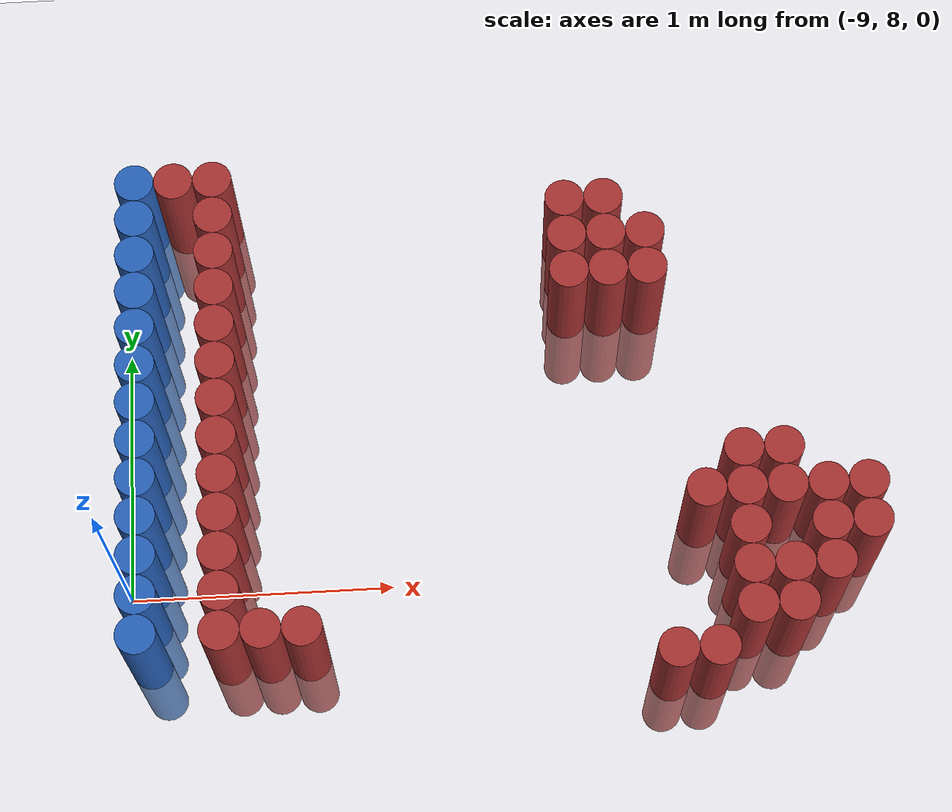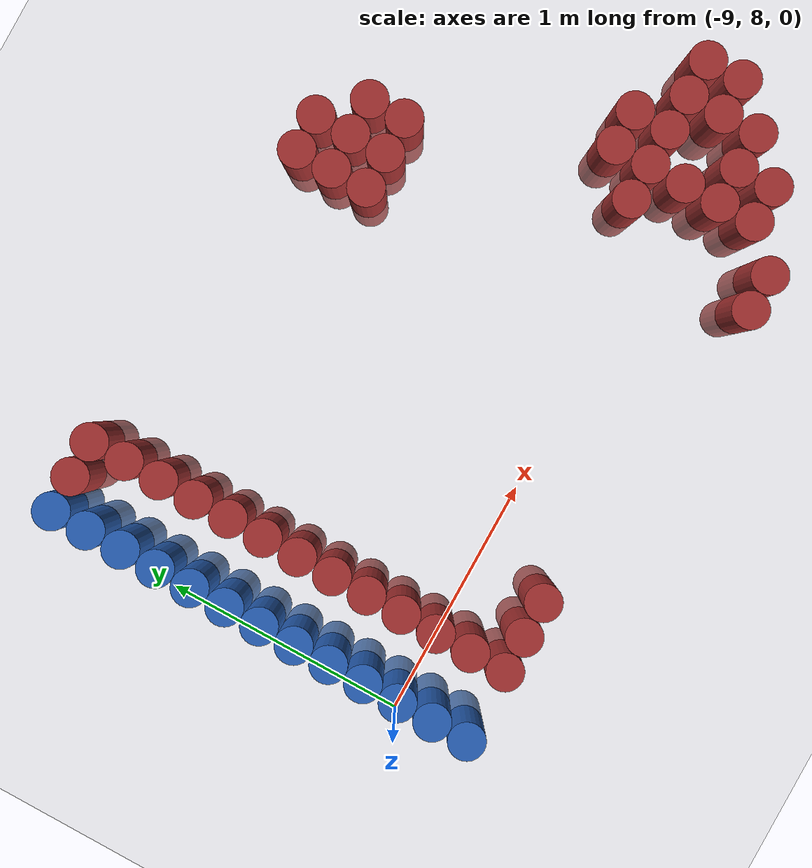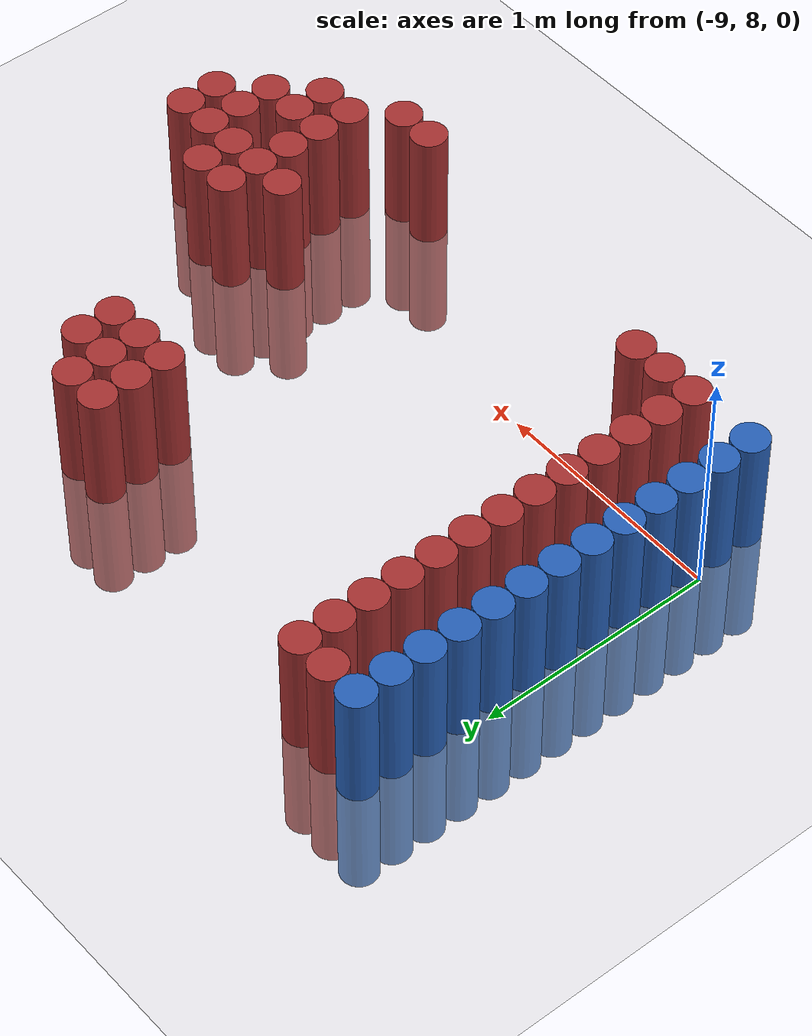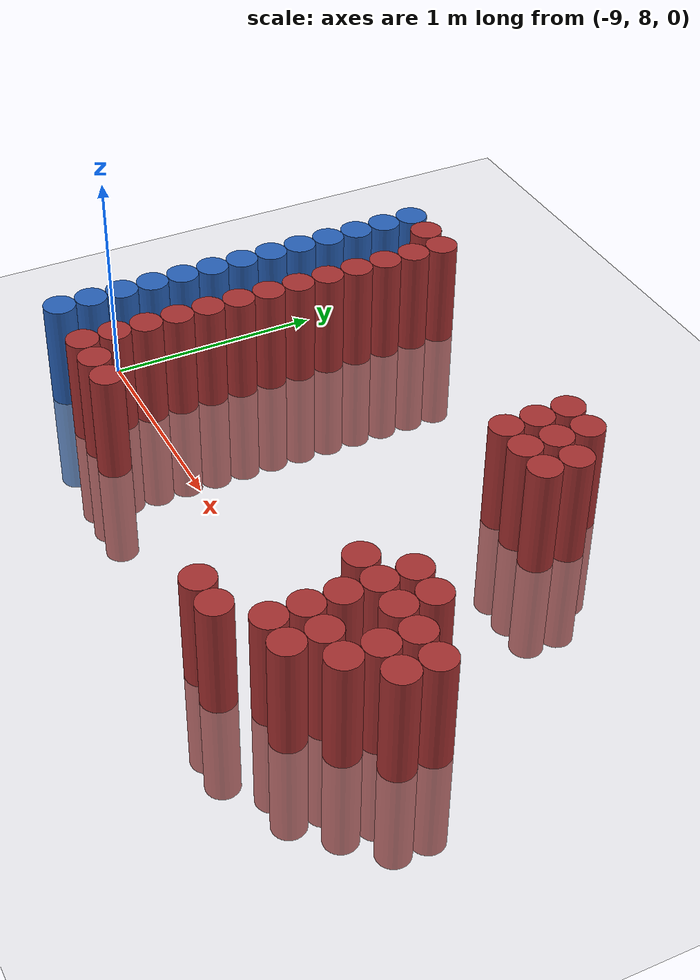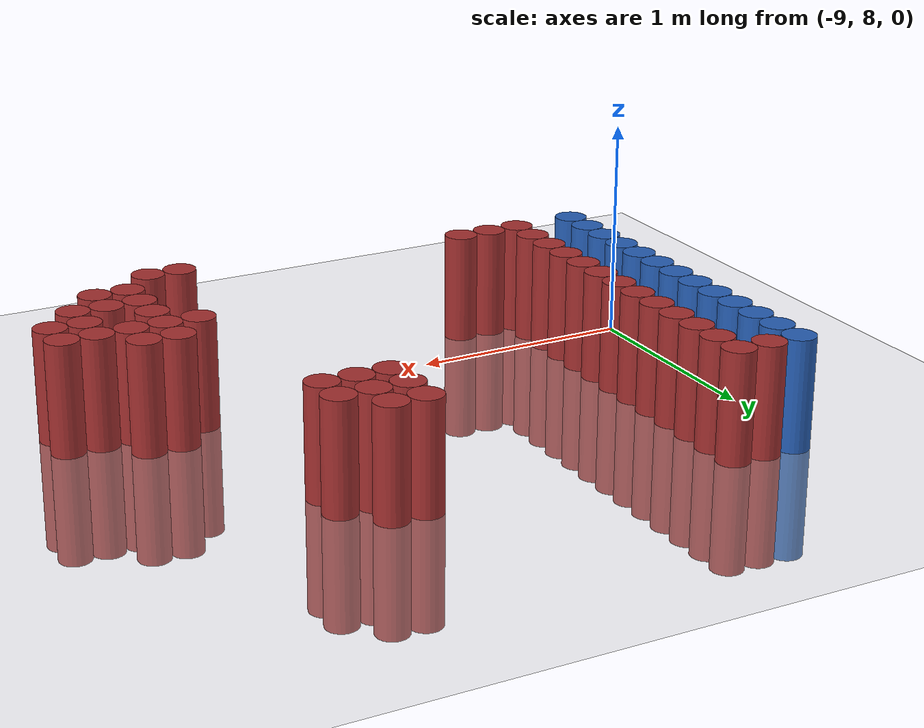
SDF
<sdf version="1.6">
 <world name="default">
  <model name="ground_plane">
   <static>1</static>
   <link name="link">
    <collision name="collision">
     <geometry><plane><normal>0 0 1</normal><size>100 100</size></plane></geometry>
     <surface><friction><ode><mu>100</mu><mu2>50</mu2></ode></friction></surface>
    </collision>
    <visual name="visual">
     <cast_shadows>0</cast_shadows>
     <geometry><plane><normal>0 0 1</normal><size>100 100</size></plane></geometry>
     <material>
      <script><uri>file://media/materials/scripts/gazebo.material</uri><name>Gazebo/Grey</name></script>
     </material>
    </visual>
   </link>
  </model>
  <model name="unit_cylinder_142">
   <static>1</static>
   <pose>-8.925000 7.725000 0.000000 0.000000 0.000000 0.000000</pose>
   <link name="link">
    <inertial>
     <mass>1</mass>
     <inertia><ixx>0.145833</ixx><ixy>0</ixy><ixz>0</ixz><iyy>0.145833</iyy><iyz>0</iyz><izz>0.125</izz></inertia>
    </inertial>
    <collision name="collision">
     <geometry><cylinder><radius>0.075000</radius><length>1</length></cylinder></geometry>
    </collision>
    <visual name="visual">
     <geometry><cylinder><radius>0.075000</radius><length>1</length></cylinder></geometry>
     <material>
      <ambient>0.152000 0.379000 0.720000 1</ambient>
      <diffuse>0.152000 0.379000 0.720000 1</diffuse>
     </material>
     <material>
      <script><name>Gazebo/Grey</name><uri>file://media/materials/scripts/gazebo.material</uri></script>
     </material>
    </visual>
   </link>
  </model>
  <model name="unit_cylinder_143">
   <static>1</static>
   <pose>-8.925000 7.875000 0.000000 0.000000 0.000000 0.000000</pose>
   <link name="link">
    <inertial>
     <mass>1</mass>
     <inertia><ixx>0.145833</ixx><ixy>0</ixy><ixz>0</ixz><iyy>0.145833</iyy><iyz>0</iyz><izz>0.125</izz></inertia>
    </inertial>
    <collision name="collision">
     <geometry><cylinder><radius>0.075000</radius><length>1</length></cylinder></geometry>
    </collision>
    <visual name="visual">
     <geometry><cylinder><radius>0.075000</radius><length>1</length></cylinder></geometry>
     <material>
      <ambient>0.152000 0.379000 0.720000 1</ambient>
      <diffuse>0.152000 0.379000 0.720000 1</diffuse>
     </material>
     <material>
      <script><name>Gazebo/Grey</name><uri>file://media/materials/scripts/gazebo.material</uri></script>
     </material>
    </visual>
   </link>
  </model>
  <model name="unit_cylinder_144">
   <static>1</static>
   <pose>-8.925000 8.025000 0.000000 0.000000 0.000000 0.000000</pose>
   <link name="link">
    <inertial>
     <mass>1</mass>
     <inertia><ixx>0.145833</ixx><ixy>0</ixy><ixz>0</ixz><iyy>0.145833</iyy><iyz>0</iyz><izz>0.125</izz></inertia>
    </inertial>
    <collision name="collision">
     <geometry><cylinder><radius>0.075000</radius><length>1</length></cylinder></geometry>
    </collision>
    <visual name="visual">
     <geometry><cylinder><radius>0.075000</radius><length>1</length></cylinder></geometry>
     <material>
      <ambient>0.152000 0.379000 0.720000 1</ambient>
      <diffuse>0.152000 0.379000 0.720000 1</diffuse>
     </material>
     <material>
      <script><name>Gazebo/Grey</name><uri>file://media/materials/scripts/gazebo.material</uri></script>
     </material>
    </visual>
   </link>
  </model>
  <model name="unit_cylinder_145">
   <static>1</static>
   <pose>-8.925000 8.175000 0.000000 0.000000 0.000000 0.000000</pose>
   <link name="link">
    <inertial>
     <mass>1</mass>
     <inertia><ixx>0.145833</ixx><ixy>0</ixy><ixz>0</ixz><iyy>0.145833</iyy><iyz>0</iyz><izz>0.125</izz></inertia>
    </inertial>
    <collision name="collision">
     <geometry><cylinder><radius>0.075000</radius><length>1</length></cylinder></geometry>
    </collision>
    <visual name="visual">
     <geometry><cylinder><radius>0.075000</radius><length>1</length></cylinder></geometry>
     <material>
      <ambient>0.152000 0.379000 0.720000 1</ambient>
      <diffuse>0.152000 0.379000 0.720000 1</diffuse>
     </material>
     <material>
      <script><name>Gazebo/Grey</name><uri>file://media/materials/scripts/gazebo.material</uri></script>
     </material>
    </visual>
   </link>
  </model>
  <model name="unit_cylinder_146">
   <static>1</static>
   <pose>-8.925000 8.325000 0.000000 0.000000 0.000000 0.000000</pose>
   <link name="link">
    <inertial>
     <mass>1</mass>
     <inertia><ixx>0.145833</ixx><ixy>0</ixy><ixz>0</ixz><iyy>0.145833</iyy><iyz>0</iyz><izz>0.125</izz></inertia>
    </inertial>
    <collision name="collision">
     <geometry><cylinder><radius>0.075000</radius><length>1</length></cylinder></geometry>
    </collision>
    <visual name="visual">
     <geometry><cylinder><radius>0.075000</radius><length>1</length></cylinder></geometry>
     <material>
      <ambient>0.152000 0.379000 0.720000 1</ambient>
      <diffuse>0.152000 0.379000 0.720000 1</diffuse>
     </material>
     <material>
      <script><name>Gazebo/Grey</name><uri>file://media/materials/scripts/gazebo.material</uri></script>
     </material>
    </visual>
   </link>
  </model>
  <model name="unit_cylinder_147">
   <static>1</static>
   <pose>-8.925000 8.475000 0.000000 0.000000 0.000000 0.000000</pose>
   <link name="link">
    <inertial>
     <mass>1</mass>
     <inertia><ixx>0.145833</ixx><ixy>0</ixy><ixz>0</ixz><iyy>0.145833</iyy><iyz>0</iyz><izz>0.125</izz></inertia>
    </inertial>
    <collision name="collision">
     <geometry><cylinder><radius>0.075000</radius><length>1</length></cylinder></geometry>
    </collision>
    <visual name="visual">
     <geometry><cylinder><radius>0.075000</radius><length>1</length></cylinder></geometry>
     <material>
      <ambient>0.152000 0.379000 0.720000 1</ambient>
      <diffuse>0.152000 0.379000 0.720000 1</diffuse>
     </material>
     <material>
      <script><name>Gazebo/Grey</name><uri>file://media/materials/scripts/gazebo.material</uri></script>
     </material>
    </visual>
   </link>
  </model>
  <model name="unit_cylinder_148">
   <static>1</static>
   <pose>-8.925000 8.625000 0.000000 0.000000 0.000000 0.000000</pose>
   <link name="link">
    <inertial>
     <mass>1</mass>
     <inertia><ixx>0.145833</ixx><ixy>0</ixy><ixz>0</ixz><iyy>0.145833</iyy><iyz>0</iyz><izz>0.125</izz></inertia>
    </inertial>
    <collision name="collision">
     <geometry><cylinder><radius>0.075000</radius><length>1</length></cylinder></geometry>
    </collision>
    <visual name="visual">
     <geometry><cylinder><radius>0.075000</radius><length>1</length></cylinder></geometry>
     <material>
      <ambient>0.152000 0.379000 0.720000 1</ambient>
      <diffuse>0.152000 0.379000 0.720000 1</diffuse>
     </material>
     <material>
      <script><name>Gazebo/Grey</name><uri>file://media/materials/scripts/gazebo.material</uri></script>
     </material>
    </visual>
   </link>
  </model>
  <model name="unit_cylinder_149">
   <static>1</static>
   <pose>-8.925000 8.775000 0.000000 0.000000 0.000000 0.000000</pose>
   <link name="link">
    <inertial>
     <mass>1</mass>
     <inertia><ixx>0.145833</ixx><ixy>0</ixy><ixz>0</ixz><iyy>0.145833</iyy><iyz>0</iyz><izz>0.125</izz></inertia>
    </inertial>
    <collision name="collision">
     <geometry><cylinder><radius>0.075000</radius><length>1</length></cylinder></geometry>
    </collision>
    <visual name="visual">
     <geometry><cylinder><radius>0.075000</radius><length>1</length></cylinder></geometry>
     <material>
      <ambient>0.152000 0.379000 0.720000 1</ambient>
      <diffuse>0.152000 0.379000 0.720000 1</diffuse>
     </material>
     <material>
      <script><name>Gazebo/Grey</name><uri>file://media/materials/scripts/gazebo.material</uri></script>
     </material>
    </visual>
   </link>
  </model>
  <model name="unit_cylinder_150">
   <static>1</static>
   <pose>-8.925000 8.925000 0.000000 0.000000 0.000000 0.000000</pose>
   <link name="link">
    <inertial>
     <mass>1</mass>
     <inertia><ixx>0.145833</ixx><ixy>0</ixy><ixz>0</ixz><iyy>0.145833</iyy><iyz>0</iyz><izz>0.125</izz></inertia>
    </inertial>
    <collision name="collision">
     <geometry><cylinder><radius>0.075000</radius><length>1</length></cylinder></geometry>
    </collision>
    <visual name="visual">
     <geometry><cylinder><radius>0.075000</radius><length>1</length></cylinder></geometry>
     <material>
      <ambient>0.152000 0.379000 0.720000 1</ambient>
      <diffuse>0.152000 0.379000 0.720000 1</diffuse>
     </material>
     <material>
      <script><name>Gazebo/Grey</name><uri>file://media/materials/scripts/gazebo.material</uri></script>
     </material>
    </visual>
   </link>
  </model>
  <model name="unit_cylinder_151">
   <static>1</static>
   <pose>-8.925000 9.075000 0.000000 0.000000 0.000000 0.000000</pose>
   <link name="link">
    <inertial>
     <mass>1</mass>
     <inertia><ixx>0.145833</ixx><ixy>0</ixy><ixz>0</ixz><iyy>0.145833</iyy><iyz>0</iyz><izz>0.125</izz></inertia>
    </inertial>
    <collision name="collision">
     <geometry><cylinder><radius>0.075000</radius><length>1</length></cylinder></geometry>
    </collision>
    <visual name="visual">
     <geometry><cylinder><radius>0.075000</radius><length>1</length></cylinder></geometry>
     <material>
      <ambient>0.152000 0.379000 0.720000 1</ambient>
      <diffuse>0.152000 0.379000 0.720000 1</diffuse>
     </material>
     <material>
      <script><name>Gazebo/Grey</name><uri>file://media/materials/scripts/gazebo.material</uri></script>
     </material>
    </visual>
   </link>
  </model>
  <model name="unit_cylinder_152">
   <static>1</static>
   <pose>-8.925000 9.225000 0.000000 0.000000 0.000000 0.000000</pose>
   <link name="link">
    <inertial>
     <mass>1</mass>
     <inertia><ixx>0.145833</ixx><ixy>0</ixy><ixz>0</ixz><iyy>0.145833</iyy><iyz>0</iyz><izz>0.125</izz></inertia>
    </inertial>
    <collision name="collision">
     <geometry><cylinder><radius>0.075000</radius><length>1</length></cylinder></geometry>
    </collision>
    <visual name="visual">
     <geometry><cylinder><radius>0.075000</radius><length>1</length></cylinder></geometry>
     <material>
      <ambient>0.152000 0.379000 0.720000 1</ambient>
      <diffuse>0.152000 0.379000 0.720000 1</diffuse>
     </material>
     <material>
      <script><name>Gazebo/Grey</name><uri>file://media/materials/scripts/gazebo.material</uri></script>
     </material>
    </visual>
   </link>
  </model>
  <model name="unit_cylinder_153">
   <static>1</static>
   <pose>-8.925000 9.375000 0.000000 0.000000 0.000000 0.000000</pose>
   <link name="link">
    <inertial>
     <mass>1</mass>
     <inertia><ixx>0.145833</ixx><ixy>0</ixy><ixz>0</ixz><iyy>0.145833</iyy><iyz>0</iyz><izz>0.125</izz></inertia>
    </inertial>
    <collision name="collision">
     <geometry><cylinder><radius>0.075000</radius><length>1</length></cylinder></geometry>
    </collision>
    <visual name="visual">
     <geometry><cylinder><radius>0.075000</radius><length>1</length></cylinder></geometry>
     <material>
      <ambient>0.152000 0.379000 0.720000 1</ambient>
      <diffuse>0.152000 0.379000 0.720000 1</diffuse>
     </material>
     <material>
      <script><name>Gazebo/Grey</name><uri>file://media/materials/scripts/gazebo.material</uri></script>
     </material>
    </visual>
   </link>
  </model>
  <model name="unit_cylinder_154">
   <static>1</static>
   <pose>-8.925000 9.525000 0.000000 0.000000 0.000000 0.000000</pose>
   <link name="link">
    <inertial>
     <mass>1</mass>
     <inertia><ixx>0.145833</ixx><ixy>0</ixy><ixz>0</ixz><iyy>0.145833</iyy><iyz>0</iyz><izz>0.125</izz></inertia>
    </inertial>
    <collision name="collision">
     <geometry><cylinder><radius>0.075000</radius><length>1</length></cylinder></geometry>
    </collision>
    <visual name="visual">
     <geometry><cylinder><radius>0.075000</radius><length>1</length></cylinder></geometry>
     <material>
      <ambient>0.152000 0.379000 0.720000 1</ambient>
      <diffuse>0.152000 0.379000 0.720000 1</diffuse>
     </material>
     <material>
      <script><name>Gazebo/Grey</name><uri>file://media/materials/scripts/gazebo.material</uri></script>
     </material>
    </visual>
   </link>
  </model>
  <model name="unit_cylinder_156">
   <static>1</static>
   <pose>-8.775000 9.525000 0.000000 0.000000 0.000000 0.000000</pose>
   <link name="link">
    <inertial>
     <mass>1</mass>
     <inertia><ixx>0.145833</ixx><ixy>0</ixy><ixz>0</ixz><iyy>0.145833</iyy><iyz>0</iyz><izz>0.125</izz></inertia>
    </inertial>
    <collision name="collision">
     <geometry><cylinder><radius>0.075000</radius><length>1</length></cylinder></geometry>
    </collision>
    <visual name="visual">
     <geometry><cylinder><radius>0.075000</radius><length>1</length></cylinder></geometry>
     <material>
      <ambient>0.648000 0.192000 0.192000 1</ambient>
      <diffuse>0.648000 0.192000 0.192000 1</diffuse>
     </material>
     <material>
      <script><name>Gazebo/Grey</name><uri>file://media/materials/scripts/gazebo.material</uri></script>
     </material>
    </visual>
   </link>
  </model>
  <model name="unit_cylinder_158">
   <static>1</static>
   <pose>-8.625000 7.725000 0.000000 0.000000 0.000000 0.000000</pose>
   <link name="link">
    <inertial>
     <mass>1</mass>
     <inertia><ixx>0.145833</ixx><ixy>0</ixy><ixz>0</ixz><iyy>0.145833</iyy><iyz>0</iyz><izz>0.125</izz></inertia>
    </inertial>
    <collision name="collision">
     <geometry><cylinder><radius>0.075000</radius><length>1</length></cylinder></geometry>
    </collision>
    <visual name="visual">
     <geometry><cylinder><radius>0.075000</radius><length>1</length></cylinder></geometry>
     <material>
      <ambient>0.648000 0.192000 0.192000 1</ambient>
      <diffuse>0.648000 0.192000 0.192000 1</diffuse>
     </material>
     <material>
      <script><name>Gazebo/Grey</name><uri>file://media/materials/scripts/gazebo.material</uri></script>
     </material>
    </visual>
   </link>
  </model>
  <model name="unit_cylinder_159">
   <static>1</static>
   <pose>-8.625000 7.875000 0.000000 0.000000 0.000000 0.000000</pose>
   <link name="link">
    <inertial>
     <mass>1</mass>
     <inertia><ixx>0.145833</ixx><ixy>0</ixy><ixz>0</ixz><iyy>0.145833</iyy><iyz>0</iyz><izz>0.125</izz></inertia>
    </inertial>
    <collision name="collision">
     <geometry><cylinder><radius>0.075000</radius><length>1</length></cylinder></geometry>
    </collision>
    <visual name="visual">
     <geometry><cylinder><radius>0.075000</radius><length>1</length></cylinder></geometry>
     <material>
      <ambient>0.648000 0.192000 0.192000 1</ambient>
      <diffuse>0.648000 0.192000 0.192000 1</diffuse>
     </material>
     <material>
      <script><name>Gazebo/Grey</name><uri>file://media/materials/scripts/gazebo.material</uri></script>
     </material>
    </visual>
   </link>
  </model>
  <model name="unit_cylinder_160">
   <static>1</static>
   <pose>-8.625000 8.025000 0.000000 0.000000 0.000000 0.000000</pose>
   <link name="link">
    <inertial>
     <mass>1</mass>
     <inertia><ixx>0.145833</ixx><ixy>0</ixy><ixz>0</ixz><iyy>0.145833</iyy><iyz>0</iyz><izz>0.125</izz></inertia>
    </inertial>
    <collision name="collision">
     <geometry><cylinder><radius>0.075000</radius><length>1</length></cylinder></geometry>
    </collision>
    <visual name="visual">
     <geometry><cylinder><radius>0.075000</radius><length>1</length></cylinder></geometry>
     <material>
      <ambient>0.648000 0.192000 0.192000 1</ambient>
      <diffuse>0.648000 0.192000 0.192000 1</diffuse>
     </material>
     <material>
      <script><name>Gazebo/Grey</name><uri>file://media/materials/scripts/gazebo.material</uri></script>
     </material>
    </visual>
   </link>
  </model>
  <model name="unit_cylinder_161">
   <static>1</static>
   <pose>-8.625000 8.175000 0.000000 0.000000 0.000000 0.000000</pose>
   <link name="link">
    <inertial>
     <mass>1</mass>
     <inertia><ixx>0.145833</ixx><ixy>0</ixy><ixz>0</ixz><iyy>0.145833</iyy><iyz>0</iyz><izz>0.125</izz></inertia>
    </inertial>
    <collision name="collision">
     <geometry><cylinder><radius>0.075000</radius><length>1</length></cylinder></geometry>
    </collision>
    <visual name="visual">
     <geometry><cylinder><radius>0.075000</radius><length>1</length></cylinder></geometry>
     <material>
      <ambient>0.648000 0.192000 0.192000 1</ambient>
      <diffuse>0.648000 0.192000 0.192000 1</diffuse>
     </material>
     <material>
      <script><name>Gazebo/Grey</name><uri>file://media/materials/scripts/gazebo.material</uri></script>
     </material>
    </visual>
   </link>
  </model>
  <model name="unit_cylinder_162">
   <static>1</static>
   <pose>-8.625000 8.325000 0.000000 0.000000 0.000000 0.000000</pose>
   <link name="link">
    <inertial>
     <mass>1</mass>
     <inertia><ixx>0.145833</ixx><ixy>0</ixy><ixz>0</ixz><iyy>0.145833</iyy><iyz>0</iyz><izz>0.125</izz></inertia>
    </inertial>
    <collision name="collision">
     <geometry><cylinder><radius>0.075000</radius><length>1</length></cylinder></geometry>
    </collision>
    <visual name="visual">
     <geometry><cylinder><radius>0.075000</radius><length>1</length></cylinder></geometry>
     <material>
      <ambient>0.648000 0.192000 0.192000 1</ambient>
      <diffuse>0.648000 0.192000 0.192000 1</diffuse>
     </material>
     <material>
      <script><name>Gazebo/Grey</name><uri>file://media/materials/scripts/gazebo.material</uri></script>
     </material>
    </visual>
   </link>
  </model>
  <model name="unit_cylinder_163">
   <static>1</static>
   <pose>-8.625000 8.475000 0.000000 0.000000 0.000000 0.000000</pose>
   <link name="link">
    <inertial>
     <mass>1</mass>
     <inertia><ixx>0.145833</ixx><ixy>0</ixy><ixz>0</ixz><iyy>0.145833</iyy><iyz>0</iyz><izz>0.125</izz></inertia>
    </inertial>
    <collision name="collision">
     <geometry><cylinder><radius>0.075000</radius><length>1</length></cylinder></geometry>
    </collision>
    <visual name="visual">
     <geometry><cylinder><radius>0.075000</radius><length>1</length></cylinder></geometry>
     <material>
      <ambient>0.648000 0.192000 0.192000 1</ambient>
      <diffuse>0.648000 0.192000 0.192000 1</diffuse>
     </material>
     <material>
      <script><name>Gazebo/Grey</name><uri>file://media/materials/scripts/gazebo.material</uri></script>
     </material>
    </visual>
   </link>
  </model>
  <model name="unit_cylinder_164">
   <static>1</static>
   <pose>-8.625000 8.625000 0.000000 0.000000 0.000000 0.000000</pose>
   <link name="link">
    <inertial>
     <mass>1</mass>
     <inertia><ixx>0.145833</ixx><ixy>0</ixy><ixz>0</ixz><iyy>0.145833</iyy><iyz>0</iyz><izz>0.125</izz></inertia>
    </inertial>
    <collision name="collision">
     <geometry><cylinder><radius>0.075000</radius><length>1</length></cylinder></geometry>
    </collision>
    <visual name="visual">
     <geometry><cylinder><radius>0.075000</radius><length>1</length></cylinder></geometry>
     <material>
      <ambient>0.648000 0.192000 0.192000 1</ambient>
      <diffuse>0.648000 0.192000 0.192000 1</diffuse>
     </material>
     <material>
      <script><name>Gazebo/Grey</name><uri>file://media/materials/scripts/gazebo.material</uri></script>
     </material>
    </visual>
   </link>
  </model>
  <model name="unit_cylinder_165">
   <static>1</static>
   <pose>-8.625000 8.775000 0.000000 0.000000 0.000000 0.000000</pose>
   <link name="link">
    <inertial>
     <mass>1</mass>
     <inertia><ixx>0.145833</ixx><ixy>0</ixy><ixz>0</ixz><iyy>0.145833</iyy><iyz>0</iyz><izz>0.125</izz></inertia>
    </inertial>
    <collision name="collision">
     <geometry><cylinder><radius>0.075000</radius><length>1</length></cylinder></geometry>
    </collision>
    <visual name="visual">
     <geometry><cylinder><radius>0.075000</radius><length>1</length></cylinder></geometry>
     <material>
      <ambient>0.648000 0.192000 0.192000 1</ambient>
      <diffuse>0.648000 0.192000 0.192000 1</diffuse>
     </material>
     <material>
      <script><name>Gazebo/Grey</name><uri>file://media/materials/scripts/gazebo.material</uri></script>
     </material>
    </visual>
   </link>
  </model>
  <model name="unit_cylinder_166">
   <static>1</static>
   <pose>-8.625000 8.925000 0.000000 0.000000 0.000000 0.000000</pose>
   <link name="link">
    <inertial>
     <mass>1</mass>
     <inertia><ixx>0.145833</ixx><ixy>0</ixy><ixz>0</ixz><iyy>0.145833</iyy><iyz>0</iyz><izz>0.125</izz></inertia>
    </inertial>
    <collision name="collision">
     <geometry><cylinder><radius>0.075000</radius><length>1</length></cylinder></geometry>
    </collision>
    <visual name="visual">
     <geometry><cylinder><radius>0.075000</radius><length>1</length></cylinder></geometry>
     <material>
      <ambient>0.648000 0.192000 0.192000 1</ambient>
      <diffuse>0.648000 0.192000 0.192000 1</diffuse>
     </material>
     <material>
      <script><name>Gazebo/Grey</name><uri>file://media/materials/scripts/gazebo.material</uri></script>
     </material>
    </visual>
   </link>
  </model>
  <model name="unit_cylinder_167">
   <static>1</static>
   <pose>-8.625000 9.075000 0.000000 0.000000 0.000000 0.000000</pose>
   <link name="link">
    <inertial>
     <mass>1</mass>
     <inertia><ixx>0.145833</ixx><ixy>0</ixy><ixz>0</ixz><iyy>0.145833</iyy><iyz>0</iyz><izz>0.125</izz></inertia>
    </inertial>
    <collision name="collision">
     <geometry><cylinder><radius>0.075000</radius><length>1</length></cylinder></geometry>
    </collision>
    <visual name="visual">
     <geometry><cylinder><radius>0.075000</radius><length>1</length></cylinder></geometry>
     <material>
      <ambient>0.648000 0.192000 0.192000 1</ambient>
      <diffuse>0.648000 0.192000 0.192000 1</diffuse>
     </material>
     <material>
      <script><name>Gazebo/Grey</name><uri>file://media/materials/scripts/gazebo.material</uri></script>
     </material>
    </visual>
   </link>
  </model>
  <model name="unit_cylinder_168">
   <static>1</static>
   <pose>-8.625000 9.225000 0.000000 0.000000 0.000000 0.000000</pose>
   <link name="link">
    <inertial>
     <mass>1</mass>
     <inertia><ixx>0.145833</ixx><ixy>0</ixy><ixz>0</ixz><iyy>0.145833</iyy><iyz>0</iyz><izz>0.125</izz></inertia>
    </inertial>
    <collision name="collision">
     <geometry><cylinder><radius>0.075000</radius><length>1</length></cylinder></geometry>
    </collision>
    <visual name="visual">
     <geometry><cylinder><radius>0.075000</radius><length>1</length></cylinder></geometry>
     <material>
      <ambient>0.648000 0.192000 0.192000 1</ambient>
      <diffuse>0.648000 0.192000 0.192000 1</diffuse>
     </material>
     <material>
      <script><name>Gazebo/Grey</name><uri>file://media/materials/scripts/gazebo.material</uri></script>
     </material>
    </visual>
   </link>
  </model>
  <model name="unit_cylinder_169">
   <static>1</static>
   <pose>-8.625000 9.375000 0.000000 0.000000 0.000000 0.000000</pose>
   <link name="link">
    <inertial>
     <mass>1</mass>
     <inertia><ixx>0.145833</ixx><ixy>0</ixy><ixz>0</ixz><iyy>0.145833</iyy><iyz>0</iyz><izz>0.125</izz></inertia>
    </inertial>
    <collision name="collision">
     <geometry><cylinder><radius>0.075000</radius><length>1</length></cylinder></geometry>
    </collision>
    <visual name="visual">
     <geometry><cylinder><radius>0.075000</radius><length>1</length></cylinder></geometry>
     <material>
      <ambient>0.648000 0.192000 0.192000 1</ambient>
      <diffuse>0.648000 0.192000 0.192000 1</diffuse>
     </material>
     <material>
      <script><name>Gazebo/Grey</name><uri>file://media/materials/scripts/gazebo.material</uri></script>
     </material>
    </visual>
   </link>
  </model>
  <model name="unit_cylinder_170">
   <static>1</static>
   <pose>-8.625000 9.525000 0.000000 0.000000 0.000000 0.000000</pose>
   <link name="link">
    <inertial>
     <mass>1</mass>
     <inertia><ixx>0.145833</ixx><ixy>0</ixy><ixz>0</ixz><iyy>0.145833</iyy><iyz>0</iyz><izz>0.125</izz></inertia>
    </inertial>
    <collision name="collision">
     <geometry><cylinder><radius>0.075000</radius><length>1</length></cylinder></geometry>
    </collision>
    <visual name="visual">
     <geometry><cylinder><radius>0.075000</radius><length>1</length></cylinder></geometry>
     <material>
      <ambient>0.648000 0.192000 0.192000 1</ambient>
      <diffuse>0.648000 0.192000 0.192000 1</diffuse>
     </material>
     <material>
      <script><name>Gazebo/Grey</name><uri>file://media/materials/scripts/gazebo.material</uri></script>
     </material>
    </visual>
   </link>
  </model>
  <model name="unit_cylinder_172">
   <static>1</static>
   <pose>-8.475000 7.725000 0.000000 0.000000 0.000000 0.000000</pose>
   <link name="link">
    <inertial>
     <mass>1</mass>
     <inertia><ixx>0.145833</ixx><ixy>0</ixy><ixz>0</ixz><iyy>0.145833</iyy><iyz>0</iyz><izz>0.125</izz></inertia>
    </inertial>
    <collision name="collision">
     <geometry><cylinder><radius>0.075000</radius><length>1</length></cylinder></geometry>
    </collision>
    <visual name="visual">
     <geometry><cylinder><radius>0.075000</radius><length>1</length></cylinder></geometry>
     <material>
      <ambient>0.648000 0.192000 0.192000 1</ambient>
      <diffuse>0.648000 0.192000 0.192000 1</diffuse>
     </material>
     <material>
      <script><name>Gazebo/Grey</name><uri>file://media/materials/scripts/gazebo.material</uri></script>
     </material>
    </visual>
   </link>
  </model>
  <model name="unit_cylinder_185">
   <static>1</static>
   <pose>-8.325000 7.725000 0.000000 0.000000 0.000000 0.000000</pose>
   <link name="link">
    <inertial>
     <mass>1</mass>
     <inertia><ixx>0.145833</ixx><ixy>0</ixy><ixz>0</ixz><iyy>0.145833</iyy><iyz>0</iyz><izz>0.125</izz></inertia>
    </inertial>
    <collision name="collision">
     <geometry><cylinder><radius>0.075000</radius><length>1</length></cylinder></geometry>
    </collision>
    <visual name="visual">
     <geometry><cylinder><radius>0.075000</radius><length>1</length></cylinder></geometry>
     <material>
      <ambient>0.648000 0.192000 0.192000 1</ambient>
      <diffuse>0.648000 0.192000 0.192000 1</diffuse>
     </material>
     <material>
      <script><name>Gazebo/Grey</name><uri>file://media/materials/scripts/gazebo.material</uri></script>
     </material>
    </visual>
   </link>
  </model>
  <model name="unit_cylinder_204">
   <static>1</static>
   <pose>-7.275000 9.075000 0.000000 0.000000 0.000000 0.000000</pose>
   <link name="link">
    <inertial>
     <mass>1</mass>
     <inertia><ixx>0.145833</ixx><ixy>0</ixy><ixz>0</ixz><iyy>0.145833</iyy><iyz>0</iyz><izz>0.125</izz></inertia>
    </inertial>
    <collision name="collision">
     <geometry><cylinder><radius>0.075000</radius><length>1</length></cylinder></geometry>
    </collision>
    <visual name="visual">
     <geometry><cylinder><radius>0.075000</radius><length>1</length></cylinder></geometry>
     <material>
      <ambient>0.648000 0.192000 0.192000 1</ambient>
      <diffuse>0.648000 0.192000 0.192000 1</diffuse>
     </material>
     <material>
      <script><name>Gazebo/Grey</name><uri>file://media/materials/scripts/gazebo.material</uri></script>
     </material>
    </visual>
   </link>
  </model>
  <model name="unit_cylinder_205">
   <static>1</static>
   <pose>-7.275000 9.225000 0.000000 0.000000 0.000000 0.000000</pose>
   <link name="link">
    <inertial>
     <mass>1</mass>
     <inertia><ixx>0.145833</ixx><ixy>0</ixy><ixz>0</ixz><iyy>0.145833</iyy><iyz>0</iyz><izz>0.125</izz></inertia>
    </inertial>
    <collision name="collision">
     <geometry><cylinder><radius>0.075000</radius><length>1</length></cylinder></geometry>
    </collision>
    <visual name="visual">
     <geometry><cylinder><radius>0.075000</radius><length>1</length></cylinder></geometry>
     <material>
      <ambient>0.648000 0.192000 0.192000 1</ambient>
      <diffuse>0.648000 0.192000 0.192000 1</diffuse>
     </material>
     <material>
      <script><name>Gazebo/Grey</name><uri>file://media/materials/scripts/gazebo.material</uri></script>
     </material>
    </visual>
   </link>
  </model>
  <model name="unit_cylinder_206">
   <static>1</static>
   <pose>-7.275000 9.375000 0.000000 0.000000 0.000000 0.000000</pose>
   <link name="link">
    <inertial>
     <mass>1</mass>
     <inertia><ixx>0.145833</ixx><ixy>0</ixy><ixz>0</ixz><iyy>0.145833</iyy><iyz>0</iyz><izz>0.125</izz></inertia>
    </inertial>
    <collision name="collision">
     <geometry><cylinder><radius>0.075000</radius><length>1</length></cylinder></geometry>
    </collision>
    <visual name="visual">
     <geometry><cylinder><radius>0.075000</radius><length>1</length></cylinder></geometry>
     <material>
      <ambient>0.648000 0.192000 0.192000 1</ambient>
      <diffuse>0.648000 0.192000 0.192000 1</diffuse>
     </material>
     <material>
      <script><name>Gazebo/Grey</name><uri>file://media/materials/scripts/gazebo.material</uri></script>
     </material>
    </visual>
   </link>
  </model>
  <model name="unit_cylinder_208">
   <static>1</static>
   <pose>-7.125000 9.075000 0.000000 0.000000 0.000000 0.000000</pose>
   <link name="link">
    <inertial>
     <mass>1</mass>
     <inertia><ixx>0.145833</ixx><ixy>0</ixy><ixz>0</ixz><iyy>0.145833</iyy><iyz>0</iyz><izz>0.125</izz></inertia>
    </inertial>
    <collision name="collision">
     <geometry><cylinder><radius>0.075000</radius><length>1</length></cylinder></geometry>
    </collision>
    <visual name="visual">
     <geometry><cylinder><radius>0.075000</radius><length>1</length></cylinder></geometry>
     <material>
      <ambient>0.648000 0.192000 0.192000 1</ambient>
      <diffuse>0.648000 0.192000 0.192000 1</diffuse>
     </material>
     <material>
      <script><name>Gazebo/Grey</name><uri>file://media/materials/scripts/gazebo.material</uri></script>
     </material>
    </visual>
   </link>
  </model>
  <model name="unit_cylinder_209">
   <static>1</static>
   <pose>-7.125000 9.225000 0.000000 0.000000 0.000000 0.000000</pose>
   <link name="link">
    <inertial>
     <mass>1</mass>
     <inertia><ixx>0.145833</ixx><ixy>0</ixy><ixz>0</ixz><iyy>0.145833</iyy><iyz>0</iyz><izz>0.125</izz></inertia>
    </inertial>
    <collision name="collision">
     <geometry><cylinder><radius>0.075000</radius><length>1</length></cylinder></geometry>
    </collision>
    <visual name="visual">
     <geometry><cylinder><radius>0.075000</radius><length>1</length></cylinder></geometry>
     <material>
      <ambient>0.648000 0.192000 0.192000 1</ambient>
      <diffuse>0.648000 0.192000 0.192000 1</diffuse>
     </material>
     <material>
      <script><name>Gazebo/Grey</name><uri>file://media/materials/scripts/gazebo.material</uri></script>
     </material>
    </visual>
   </link>
  </model>
  <model name="unit_cylinder_210">
   <static>1</static>
   <pose>-7.125000 9.375000 0.000000 0.000000 0.000000 0.000000</pose>
   <link name="link">
    <inertial>
     <mass>1</mass>
     <inertia><ixx>0.145833</ixx><ixy>0</ixy><ixz>0</ixz><iyy>0.145833</iyy><iyz>0</iyz><izz>0.125</izz></inertia>
    </inertial>
    <collision name="collision">
     <geometry><cylinder><radius>0.075000</radius><length>1</length></cylinder></geometry>
    </collision>
    <visual name="visual">
     <geometry><cylinder><radius>0.075000</radius><length>1</length></cylinder></geometry>
     <material>
      <ambient>0.648000 0.192000 0.192000 1</ambient>
      <diffuse>0.648000 0.192000 0.192000 1</diffuse>
     </material>
     <material>
      <script><name>Gazebo/Grey</name><uri>file://media/materials/scripts/gazebo.material</uri></script>
     </material>
    </visual>
   </link>
  </model>
  <model name="unit_cylinder_212">
   <static>1</static>
   <pose>-6.975000 7.575000 0.000000 0.000000 0.000000 0.000000</pose>
   <link name="link">
    <inertial>
     <mass>1</mass>
     <inertia><ixx>0.145833</ixx><ixy>0</ixy><ixz>0</ixz><iyy>0.145833</iyy><iyz>0</iyz><izz>0.125</izz></inertia>
    </inertial>
    <collision name="collision">
     <geometry><cylinder><radius>0.075000</radius><length>1</length></cylinder></geometry>
    </collision>
    <visual name="visual">
     <geometry><cylinder><radius>0.075000</radius><length>1</length></cylinder></geometry>
     <material>
      <ambient>0.648000 0.192000 0.192000 1</ambient>
      <diffuse>0.648000 0.192000 0.192000 1</diffuse>
     </material>
     <material>
      <script><name>Gazebo/Grey</name><uri>file://media/materials/scripts/gazebo.material</uri></script>
     </material>
    </visual>
   </link>
  </model>
  <model name="unit_cylinder_213">
   <static>1</static>
   <pose>-6.975000 9.075000 0.000000 0.000000 0.000000 0.000000</pose>
   <link name="link">
    <inertial>
     <mass>1</mass>
     <inertia><ixx>0.145833</ixx><ixy>0</ixy><ixz>0</ixz><iyy>0.145833</iyy><iyz>0</iyz><izz>0.125</izz></inertia>
    </inertial>
    <collision name="collision">
     <geometry><cylinder><radius>0.075000</radius><length>1</length></cylinder></geometry>
    </collision>
    <visual name="visual">
     <geometry><cylinder><radius>0.075000</radius><length>1</length></cylinder></geometry>
     <material>
      <ambient>0.648000 0.192000 0.192000 1</ambient>
      <diffuse>0.648000 0.192000 0.192000 1</diffuse>
     </material>
     <material>
      <script><name>Gazebo/Grey</name><uri>file://media/materials/scripts/gazebo.material</uri></script>
     </material>
    </visual>
   </link>
  </model>
  <model name="unit_cylinder_214">
   <static>1</static>
   <pose>-6.975000 9.225000 0.000000 0.000000 0.000000 0.000000</pose>
   <link name="link">
    <inertial>
     <mass>1</mass>
     <inertia><ixx>0.145833</ixx><ixy>0</ixy><ixz>0</ixz><iyy>0.145833</iyy><iyz>0</iyz><izz>0.125</izz></inertia>
    </inertial>
    <collision name="collision">
     <geometry><cylinder><radius>0.075000</radius><length>1</length></cylinder></geometry>
    </collision>
    <visual name="visual">
     <geometry><cylinder><radius>0.075000</radius><length>1</length></cylinder></geometry>
     <material>
      <ambient>0.648000 0.192000 0.192000 1</ambient>
      <diffuse>0.648000 0.192000 0.192000 1</diffuse>
     </material>
     <material>
      <script><name>Gazebo/Grey</name><uri>file://media/materials/scripts/gazebo.material</uri></script>
     </material>
    </visual>
   </link>
  </model>
  <model name="unit_cylinder_216">
   <static>1</static>
   <pose>-6.825000 7.575000 0.000000 0.000000 0.000000 0.000000</pose>
   <link name="link">
    <inertial>
     <mass>1</mass>
     <inertia><ixx>0.145833</ixx><ixy>0</ixy><ixz>0</ixz><iyy>0.145833</iyy><iyz>0</iyz><izz>0.125</izz></inertia>
    </inertial>
    <collision name="collision">
     <geometry><cylinder><radius>0.075000</radius><length>1</length></cylinder></geometry>
    </collision>
    <visual name="visual">
     <geometry><cylinder><radius>0.075000</radius><length>1</length></cylinder></geometry>
     <material>
      <ambient>0.648000 0.192000 0.192000 1</ambient>
      <diffuse>0.648000 0.192000 0.192000 1</diffuse>
     </material>
     <material>
      <script><name>Gazebo/Grey</name><uri>file://media/materials/scripts/gazebo.material</uri></script>
     </material>
    </visual>
   </link>
  </model>
  <model name="unit_cylinder_217">
   <static>1</static>
   <pose>-6.825000 8.175000 0.000000 0.000000 0.000000 0.000000</pose>
   <link name="link">
    <inertial>
     <mass>1</mass>
     <inertia><ixx>0.145833</ixx><ixy>0</ixy><ixz>0</ixz><iyy>0.145833</iyy><iyz>0</iyz><izz>0.125</izz></inertia>
    </inertial>
    <collision name="collision">
     <geometry><cylinder><radius>0.075000</radius><length>1</length></cylinder></geometry>
    </collision>
    <visual name="visual">
     <geometry><cylinder><radius>0.075000</radius><length>1</length></cylinder></geometry>
     <material>
      <ambient>0.648000 0.192000 0.192000 1</ambient>
      <diffuse>0.648000 0.192000 0.192000 1</diffuse>
     </material>
     <material>
      <script><name>Gazebo/Grey</name><uri>file://media/materials/scripts/gazebo.material</uri></script>
     </material>
    </visual>
   </link>
  </model>
  <model name="unit_cylinder_218">
   <static>1</static>
   <pose>-6.675000 7.725000 0.000000 0.000000 0.000000 0.000000</pose>
   <link name="link">
    <inertial>
     <mass>1</mass>
     <inertia><ixx>0.145833</ixx><ixy>0</ixy><ixz>0</ixz><iyy>0.145833</iyy><iyz>0</iyz><izz>0.125</izz></inertia>
    </inertial>
    <collision name="collision">
     <geometry><cylinder><radius>0.075000</radius><length>1</length></cylinder></geometry>
    </collision>
    <visual name="visual">
     <geometry><cylinder><radius>0.075000</radius><length>1</length></cylinder></geometry>
     <material>
      <ambient>0.648000 0.192000 0.192000 1</ambient>
      <diffuse>0.648000 0.192000 0.192000 1</diffuse>
     </material>
     <material>
      <script><name>Gazebo/Grey</name><uri>file://media/materials/scripts/gazebo.material</uri></script>
     </material>
    </visual>
   </link>
  </model>
  <model name="unit_cylinder_219">
   <static>1</static>
   <pose>-6.675000 7.875000 0.000000 0.000000 0.000000 0.000000</pose>
   <link name="link">
    <inertial>
     <mass>1</mass>
     <inertia><ixx>0.145833</ixx><ixy>0</ixy><ixz>0</ixz><iyy>0.145833</iyy><iyz>0</iyz><izz>0.125</izz></inertia>
    </inertial>
    <collision name="collision">
     <geometry><cylinder><radius>0.075000</radius><length>1</length></cylinder></geometry>
    </collision>
    <visual name="visual">
     <geometry><cylinder><radius>0.075000</radius><length>1</length></cylinder></geometry>
     <material>
      <ambient>0.648000 0.192000 0.192000 1</ambient>
      <diffuse>0.648000 0.192000 0.192000 1</diffuse>
     </material>
     <material>
      <script><name>Gazebo/Grey</name><uri>file://media/materials/scripts/gazebo.material</uri></script>
     </material>
    </visual>
   </link>
  </model>
  <model name="unit_cylinder_220">
   <static>1</static>
   <pose>-6.675000 8.025000 0.000000 0.000000 0.000000 0.000000</pose>
   <link name="link">
    <inertial>
     <mass>1</mass>
     <inertia><ixx>0.145833</ixx><ixy>0</ixy><ixz>0</ixz><iyy>0.145833</iyy><iyz>0</iyz><izz>0.125</izz></inertia>
    </inertial>
    <collision name="collision">
     <geometry><cylinder><radius>0.075000</radius><length>1</length></cylinder></geometry>
    </collision>
    <visual name="visual">
     <geometry><cylinder><radius>0.075000</radius><length>1</length></cylinder></geometry>
     <material>
      <ambient>0.648000 0.192000 0.192000 1</ambient>
      <diffuse>0.648000 0.192000 0.192000 1</diffuse>
     </material>
     <material>
      <script><name>Gazebo/Grey</name><uri>file://media/materials/scripts/gazebo.material</uri></script>
     </material>
    </visual>
   </link>
  </model>
  <model name="unit_cylinder_221">
   <static>1</static>
   <pose>-6.675000 8.175000 0.000000 0.000000 0.000000 0.000000</pose>
   <link name="link">
    <inertial>
     <mass>1</mass>
     <inertia><ixx>0.145833</ixx><ixy>0</ixy><ixz>0</ixz><iyy>0.145833</iyy><iyz>0</iyz><izz>0.125</izz></inertia>
    </inertial>
    <collision name="collision">
     <geometry><cylinder><radius>0.075000</radius><length>1</length></cylinder></geometry>
    </collision>
    <visual name="visual">
     <geometry><cylinder><radius>0.075000</radius><length>1</length></cylinder></geometry>
     <material>
      <ambient>0.648000 0.192000 0.192000 1</ambient>
      <diffuse>0.648000 0.192000 0.192000 1</diffuse>
     </material>
     <material>
      <script><name>Gazebo/Grey</name><uri>file://media/materials/scripts/gazebo.material</uri></script>
     </material>
    </visual>
   </link>
  </model>
  <model name="unit_cylinder_222">
   <static>1</static>
   <pose>-6.675000 8.325000 0.000000 0.000000 0.000000 0.000000</pose>
   <link name="link">
    <inertial>
     <mass>1</mass>
     <inertia><ixx>0.145833</ixx><ixy>0</ixy><ixz>0</ixz><iyy>0.145833</iyy><iyz>0</iyz><izz>0.125</izz></inertia>
    </inertial>
    <collision name="collision">
     <geometry><cylinder><radius>0.075000</radius><length>1</length></cylinder></geometry>
    </collision>
    <visual name="visual">
     <geometry><cylinder><radius>0.075000</radius><length>1</length></cylinder></geometry>
     <material>
      <ambient>0.648000 0.192000 0.192000 1</ambient>
      <diffuse>0.648000 0.192000 0.192000 1</diffuse>
     </material>
     <material>
      <script><name>Gazebo/Grey</name><uri>file://media/materials/scripts/gazebo.material</uri></script>
     </material>
    </visual>
   </link>
  </model>
  <model name="unit_cylinder_226">
   <static>1</static>
   <pose>-6.525000 7.725000 0.000000 0.000000 0.000000 0.000000</pose>
   <link name="link">
    <inertial>
     <mass>1</mass>
     <inertia><ixx>0.145833</ixx><ixy>0</ixy><ixz>0</ixz><iyy>0.145833</iyy><iyz>0</iyz><izz>0.125</izz></inertia>
    </inertial>
    <collision name="collision">
     <geometry><cylinder><radius>0.075000</radius><length>1</length></cylinder></geometry>
    </collision>
    <visual name="visual">
     <geometry><cylinder><radius>0.075000</radius><length>1</length></cylinder></geometry>
     <material>
      <ambient>0.648000 0.192000 0.192000 1</ambient>
      <diffuse>0.648000 0.192000 0.192000 1</diffuse>
     </material>
     <material>
      <script><name>Gazebo/Grey</name><uri>file://media/materials/scripts/gazebo.material</uri></script>
     </material>
    </visual>
   </link>
  </model>
  <model name="unit_cylinder_227">
   <static>1</static>
   <pose>-6.525000 7.875000 0.000000 0.000000 0.000000 0.000000</pose>
   <link name="link">
    <inertial>
     <mass>1</mass>
     <inertia><ixx>0.145833</ixx><ixy>0</ixy><ixz>0</ixz><iyy>0.145833</iyy><iyz>0</iyz><izz>0.125</izz></inertia>
    </inertial>
    <collision name="collision">
     <geometry><cylinder><radius>0.075000</radius><length>1</length></cylinder></geometry>
    </collision>
    <visual name="visual">
     <geometry><cylinder><radius>0.075000</radius><length>1</length></cylinder></geometry>
     <material>
      <ambient>0.648000 0.192000 0.192000 1</ambient>
      <diffuse>0.648000 0.192000 0.192000 1</diffuse>
     </material>
     <material>
      <script><name>Gazebo/Grey</name><uri>file://media/materials/scripts/gazebo.material</uri></script>
     </material>
    </visual>
   </link>
  </model>
  <model name="unit_cylinder_228">
   <static>1</static>
   <pose>-6.525000 8.175000 0.000000 0.000000 0.000000 0.000000</pose>
   <link name="link">
    <inertial>
     <mass>1</mass>
     <inertia><ixx>0.145833</ixx><ixy>0</ixy><ixz>0</ixz><iyy>0.145833</iyy><iyz>0</iyz><izz>0.125</izz></inertia>
    </inertial>
    <collision name="collision">
     <geometry><cylinder><radius>0.075000</radius><length>1</length></cylinder></geometry>
    </collision>
    <visual name="visual">
     <geometry><cylinder><radius>0.075000</radius><length>1</length></cylinder></geometry>
     <material>
      <ambient>0.648000 0.192000 0.192000 1</ambient>
      <diffuse>0.648000 0.192000 0.192000 1</diffuse>
     </material>
     <material>
      <script><name>Gazebo/Grey</name><uri>file://media/materials/scripts/gazebo.material</uri></script>
     </material>
    </visual>
   </link>
  </model>
  <model name="unit_cylinder_229">
   <static>1</static>
   <pose>-6.525000 8.325000 0.000000 0.000000 0.000000 0.000000</pose>
   <link name="link">
    <inertial>
     <mass>1</mass>
     <inertia><ixx>0.145833</ixx><ixy>0</ixy><ixz>0</ixz><iyy>0.145833</iyy><iyz>0</iyz><izz>0.125</izz></inertia>
    </inertial>
    <collision name="collision">
     <geometry><cylinder><radius>0.075000</radius><length>1</length></cylinder></geometry>
    </collision>
    <visual name="visual">
     <geometry><cylinder><radius>0.075000</radius><length>1</length></cylinder></geometry>
     <material>
      <ambient>0.648000 0.192000 0.192000 1</ambient>
      <diffuse>0.648000 0.192000 0.192000 1</diffuse>
     </material>
     <material>
      <script><name>Gazebo/Grey</name><uri>file://media/materials/scripts/gazebo.material</uri></script>
     </material>
    </visual>
   </link>
  </model>
  <model name="unit_cylinder_233">
   <static>1</static>
   <pose>-6.375000 7.875000 0.000000 0.000000 0.000000 0.000000</pose>
   <link name="link">
    <inertial>
     <mass>1</mass>
     <inertia><ixx>0.145833</ixx><ixy>0</ixy><ixz>0</ixz><iyy>0.145833</iyy><iyz>0</iyz><izz>0.125</izz></inertia>
    </inertial>
    <collision name="collision">
     <geometry><cylinder><radius>0.075000</radius><length>1</length></cylinder></geometry>
    </collision>
    <visual name="visual">
     <geometry><cylinder><radius>0.075000</radius><length>1</length></cylinder></geometry>
     <material>
      <ambient>0.648000 0.192000 0.192000 1</ambient>
      <diffuse>0.648000 0.192000 0.192000 1</diffuse>
     </material>
     <material>
      <script><name>Gazebo/Grey</name><uri>file://media/materials/scripts/gazebo.material</uri></script>
     </material>
    </visual>
   </link>
  </model>
  <model name="unit_cylinder_234">
   <static>1</static>
   <pose>-6.375000 8.025000 0.000000 0.000000 0.000000 0.000000</pose>
   <link name="link">
    <inertial>
     <mass>1</mass>
     <inertia><ixx>0.145833</ixx><ixy>0</ixy><ixz>0</ixz><iyy>0.145833</iyy><iyz>0</iyz><izz>0.125</izz></inertia>
    </inertial>
    <collision name="collision">
     <geometry><cylinder><radius>0.075000</radius><length>1</length></cylinder></geometry>
    </collision>
    <visual name="visual">
     <geometry><cylinder><radius>0.075000</radius><length>1</length></cylinder></geometry>
     <material>
      <ambient>0.648000 0.192000 0.192000 1</ambient>
      <diffuse>0.648000 0.192000 0.192000 1</diffuse>
     </material>
     <material>
      <script><name>Gazebo/Grey</name><uri>file://media/materials/scripts/gazebo.material</uri></script>
     </material>
    </visual>
   </link>
  </model>
  <model name="unit_cylinder_235">
   <static>1</static>
   <pose>-6.375000 8.175000 0.000000 0.000000 0.000000 0.000000</pose>
   <link name="link">
    <inertial>
     <mass>1</mass>
     <inertia><ixx>0.145833</ixx><ixy>0</ixy><ixz>0</ixz><iyy>0.145833</iyy><iyz>0</iyz><izz>0.125</izz></inertia>
    </inertial>
    <collision name="collision">
     <geometry><cylinder><radius>0.075000</radius><length>1</length></cylinder></geometry>
    </collision>
    <visual name="visual">
     <geometry><cylinder><radius>0.075000</radius><length>1</length></cylinder></geometry>
     <material>
      <ambient>0.648000 0.192000 0.192000 1</ambient>
      <diffuse>0.648000 0.192000 0.192000 1</diffuse>
     </material>
     <material>
      <script><name>Gazebo/Grey</name><uri>file://media/materials/scripts/gazebo.material</uri></script>
     </material>
    </visual>
   </link>
  </model>
  <model name="unit_cylinder_238">
   <static>1</static>
   <pose>-6.225000 8.025000 0.000000 0.000000 0.000000 0.000000</pose>
   <link name="link">
    <inertial>
     <mass>1</mass>
     <inertia><ixx>0.145833</ixx><ixy>0</ixy><ixz>0</ixz><iyy>0.145833</iyy><iyz>0</iyz><izz>0.125</izz></inertia>
    </inertial>
    <collision name="collision">
     <geometry><cylinder><radius>0.075000</radius><length>1</length></cylinder></geometry>
    </collision>
    <visual name="visual">
     <geometry><cylinder><radius>0.075000</radius><length>1</length></cylinder></geometry>
     <material>
      <ambient>0.648000 0.192000 0.192000 1</ambient>
      <diffuse>0.648000 0.192000 0.192000 1</diffuse>
     </material>
     <material>
      <script><name>Gazebo/Grey</name><uri>file://media/materials/scripts/gazebo.material</uri></script>
     </material>
    </visual>
   </link>
  </model>
  <model name="unit_cylinder_239">
   <static>1</static>
   <pose>-6.225000 8.175000 0.000000 0.000000 0.000000 0.000000</pose>
   <link name="link">
    <inertial>
     <mass>1</mass>
     <inertia><ixx>0.145833</ixx><ixy>0</ixy><ixz>0</ixz><iyy>0.145833</iyy><iyz>0</iyz><izz>0.125</izz></inertia>
    </inertial>
    <collision name="collision">
     <geometry><cylinder><radius>0.075000</radius><length>1</length></cylinder></geometry>
    </collision>
    <visual name="visual">
     <geometry><cylinder><radius>0.075000</radius><length>1</length></cylinder></geometry>
     <material>
      <ambient>0.648000 0.192000 0.192000 1</ambient>
      <diffuse>0.648000 0.192000 0.192000 1</diffuse>
     </material>
     <material>
      <script><name>Gazebo/Grey</name><uri>file://media/materials/scripts/gazebo.material</uri></script>
     </material>
    </visual>
   </link>
  </model>
 </world>
</sdf>
